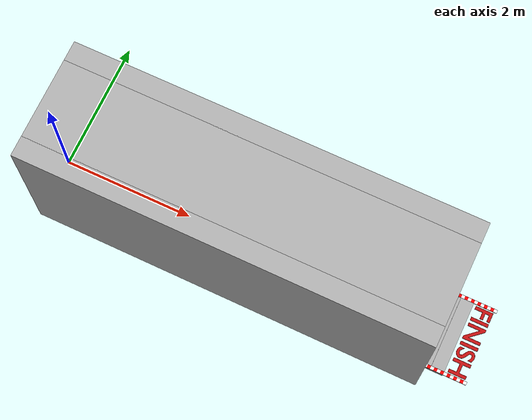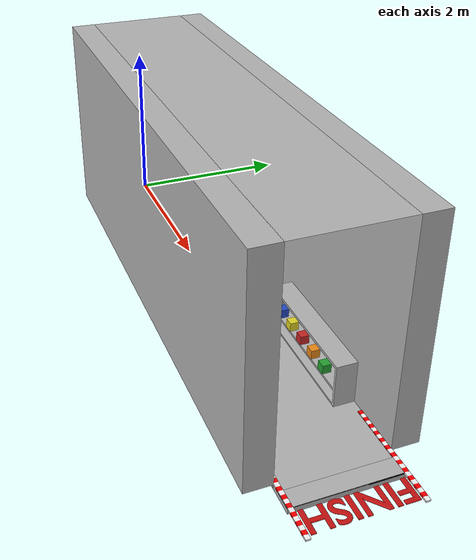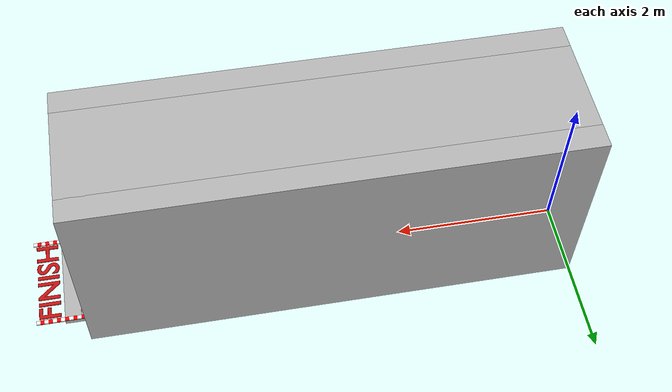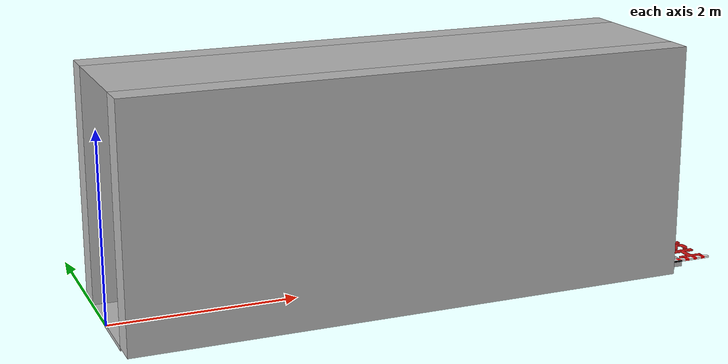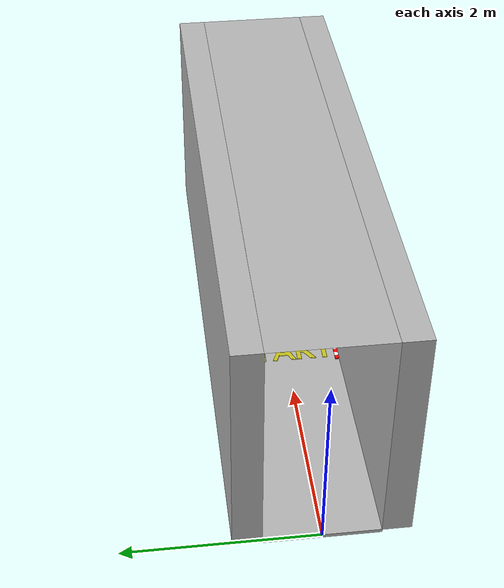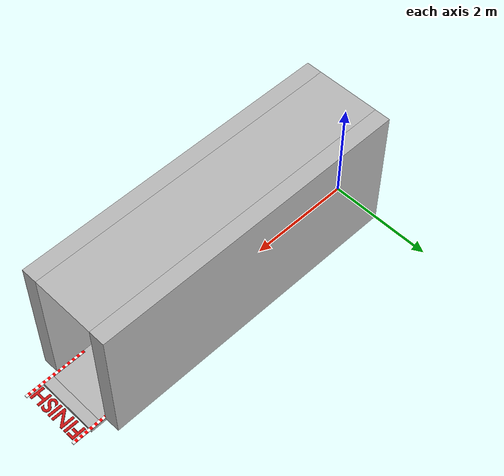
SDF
<?xml version="1.0" ?>
<sdf version="1.5">
  <world name="default">
    <gui>
      <camera name="user_camera">
        <pose>-3.2 0.0 2.05 0 0.33 0.0</pose>
      </camera>
    </gui>
    <scene>
      <sky>
        <clouds>
          <speed>3</speed>
        </clouds>
      </sky>
      <ambient>0.6 0.6 0.6 1</ambient>
      <background>0.5 0.5 0.5 1</background>
      <shadows>0</shadows>
    </scene>

    <!-- A global light source -->
    <include>
      <uri>model://sun_2</uri>
    </include>

    <include>
      <uri>model://task_5_whole</uri>
    </include>

    <include>
      <name>b1</name>
      <pose>4.0 0.4 0.28 0 0 0</pose>
      <uri>model://box_manipulation,2,false_blue</uri>
    </include>
    <include>
      <name>b2</name>
      <pose>4.25 0.4 0.28 0 0 0</pose>
      <uri>model://box_manipulation_2_true_yellow</uri>
    </include>
    <include>
      <name>b3</name>
      <pose>4.5 0.4 0.28 0 0 0</pose>
      <uri>model://box_manipulation_2_false_red</uri>
    </include>
    <include>
      <name>b4</name>
      <pose>4.75 0.4 0.28 0 0 0</pose>
      <uri>model://box_manipulation_2_false_orange</uri>
    </include>
    <include>
      <name>b5</name>
      <pose>5 0.4 0.28 0 0 0</pose>
      <uri>model://box_manipulation_2_false_green</uri>
    </include>

  </world>
</sdf>

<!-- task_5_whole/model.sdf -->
<sdf version="1.5">
  <model name="task_5_whole">

    <include>
      <pose>1.5 0.52 0.42 0 1.5708 0</pose>
      <uri>model://manipulation_1_false</uri>
    </include>

    <include>
      <pose>3.8 0.36 0 0 0 0</pose>
      <uri>model://bookcase</uri>
    </include>

    <include>
      <name>w1</name>
      <pose>3 0.745 0 0 0 0</pose>
      <uri>model://indoorwall_6m</uri>
    </include>
    <include>
      <name>w2</name>
      <pose>3 -0.745 0 0 0 0</pose>
      <uri>model://indoorwall_6m</uri>
    </include>

    <include>
      <pose>3.0 0 0.005 0 0 0</pose>
      <uri>model://floor_6m</uri>
    </include>
    <include>
      <pose>3.0 0 0 0 0 0</pose>
      <uri>model://roof_6m</uri>
    </include>

    <include>
      <pose>1.575 0.525 0 0 0 0</pose>
      <uri>model://qr_pole</uri>
    </include>

    <include>
      <pose>2.5 0 0 0 0 -1.5708</pose>
      <uri>model://start_line</uri>
    </include>
    <include>
      <pose>5.5 0 0 0 0 -1.5708</pose>
      <uri>model://finish_line</uri>
    </include>

    <include>
      <pose>4.6 0 -0.02 0 0 0</pose>
      <uri>model://indoorfloor_3.4m</uri>
    </include>

  </model>
</sdf>

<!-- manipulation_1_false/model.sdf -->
<sdf version="1.5">
  <model name="manipulation_1_false">
    <static>true</static>
    <link name="link">
      <pose>0 0 0 0 0 0</pose>
      <collision name="collision">
        <geometry>
          <box>
            <size>0.1 0.1 0.01</size>
          </box>
        </geometry>
      </collision>
      <visual name="visual">
        <cast_shadows>false</cast_shadows>
        <geometry>
          <box>
            <size>0.1 0.1 0.01</size>
          </box>
        </geometry>
        <material>
          <script>
            <uri>model://manipulation_1_false/materials/scripts</uri>
            <uri>model://manipulation_1_false/materials/textures</uri>
            <name>vrc/manipulation_1_false</name>
          </script>
        </material>
      </visual>
    </link>
  </model>
</sdf>

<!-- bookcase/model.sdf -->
<sdf version="1.5">
  <model name="bookcase">
    <static>true</static>
    <pose>0 0 0 0 0 0</pose>
    <link name="link">
      <collision name="bookcaseC">
        <geometry>
          <mesh>
            <uri>model://bookcase/untitled.dae</uri>
            <scale>1.0 1.0 1.0</scale>
          </mesh>
        </geometry>
      </collision>
      <visual name="bookcaseV">
        <cast_shadows>false</cast_shadows>
        <geometry>
          <mesh>
            <uri>model://bookcase/untitled.dae</uri>
            <scale>1.0 1.0 1.0</scale>
          </mesh>
        </geometry>
      </visual>
    </link>
  </model>
</sdf>

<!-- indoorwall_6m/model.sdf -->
<sdf version="1.5">
  <model name="indoorwall_6m">
    <static>true</static>
    <link name="link">
      <pose>0 0 1.25 0 0 0</pose>
      <collision name="collision">
        <geometry>
          <box>
            <size>6.0 0.3 2.5</size>
          </box>
        </geometry>
      </collision>
      <visual name="visual">
        <cast_shadows>false</cast_shadows>
        <geometry>
          <box>
            <size>6.0 0.3 2.5</size>
          </box>
        </geometry>
        <material>
          <script>
            <uri>model://indoorwall_6m/materials/scripts</uri>
            <uri>model://indoorwall_6m/materials/textures</uri>
            <name>vrc/indoorwall_6m</name>
          </script>
        </material>
      </visual>
    </link>
  </model>
</sdf>

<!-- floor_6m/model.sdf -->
<sdf version="1.5">
  <model name="floor_6m">
    <static>true</static>
    <link name="link">
      <pose>0 0 -0.02 0 0 0</pose>
      <collision name="collision">
        <geometry>
          <box>
            <size>6.0 1.2 0.04</size>
          </box>
        </geometry>
      </collision>
      <visual name="visual">
        <geometry>
          <box>
            <size>6.0 1.2 0.04</size>
          </box>
        </geometry>
        <material>
          <script>
            <uri>model://floor_6m/materials/scripts</uri>
            <uri>model://floor_6m/materials/textures</uri>
            <name>vrc/floor_6m</name>
          </script>
        </material>
      </visual>
    </link>
  </model>
</sdf>

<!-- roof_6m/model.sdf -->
<sdf version='1.5'>
<model name='roof_6m'>
<static>true</static>
<link name="link">
   <pose frame=''>0 0 2.5 0 0 0</pose>
   <collision name='roof_firstC'>
    <geometry>
      <mesh>
        <scale>1.0 -1.0 1.0</scale>
        <uri>model://roof_6m/roof2.dae</uri>
      </mesh>
    </geometry>
  </collision>
  <visual name='roof_firstV'>
    <cast_shadows>false</cast_shadows>
    <geometry>
      <mesh>
        <scale>1.0 -1.0 1.0</scale>
        <uri>model://roof_6m/roof2.dae</uri>
      </mesh>
    </geometry>
  </visual>
</link>
</model>
</sdf>

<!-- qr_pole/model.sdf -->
<sdf version="1.5">
  <model name="qr_pole">
    <static>true</static>
    <link name="link">
      <pose>0 0 0.25 0 0 0</pose>
      <collision name="collision">
        <geometry>
          <box>
            <size>0.15 0.15 0.5</size>
          </box>
        </geometry>
      </collision>
      <visual name="visual">
        <cast_shadows>false</cast_shadows>
        <geometry>
          <box>
            <size>0.15 0.15 0.5</size>
          </box>
        </geometry>
        <material>
          <script>
            <uri>file://media/materials/scripts/gazebo.material</uri>
            <name>Gazebo/Purple</name>
          </script>
        </material>
      </visual>
    </link>
  </model>
</sdf>

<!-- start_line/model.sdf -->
<sdf version="1.5">
  <model name="start_line">

    <include>
      <name>start</name>
      <pose>-0.55 0 0 0 0 0</pose>
      <uri>model://start</uri>
    </include>
    <include>
      <name>line</name>
      <pose>0 0.45 0 0 0 0</pose>
      <uri>model://line</uri>
    </include>
    <include>
      <name>rline</name>
      <pose>-0.575 0.55 0.001 0 0 1.5708</pose>
      <uri>model://redline</uri>
    </include>
    <include>
      <name>rline2</name>
      <pose>0.575 0.55 0.001 0 0 1.5708</pose>
      <uri>model://redline</uri>
    </include>

  </model>
</sdf>

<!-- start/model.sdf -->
<sdf version='1.5'>
<model name='start'>
<static>true</static>
<link name="link">
   <pose frame=''>0 0 0.01 0 0 0</pose>
  <visual name='startV'>
    <cast_shadows>false</cast_shadows>
    <geometry>
      <mesh>
        <scale>1.0 1.0 1.0</scale>
        <uri>model://start/model.dae</uri>
      </mesh>
    </geometry>
    <material>
      <script>
        <name>start</name>
        <uri>model://start/model.dae</uri>
      </script>
    </material>
  </visual>
</link>
</model>
</sdf>

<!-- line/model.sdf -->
<sdf version='1.5'>
<model name='line'>
<static>true</static>
<link name="link">
   <pose frame=''>0 0 0.01 0 0 0</pose>
  <visual name='lineV'>
    <cast_shadows>false</cast_shadows>
    <geometry>
      <mesh>
        <scale>1.0 1.0 1.0</scale>
        <uri>model://line/line.dae</uri>
      </mesh>
    </geometry>
    <material>
      <script>
        <name>start</name>
        <uri>model://line/line.dae</uri>
      </script>
    </material>
  </visual>
</link>
</model>
</sdf>

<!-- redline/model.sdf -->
<sdf version='1.5'>
<model name='redline'>
<static>true</static>
<link name="redline">
   <pose frame=''>0 0 0 0 0 0</pose>
  <visual name='redlineV'>
    <cast_shadows>false</cast_shadows>
    <geometry>
      <mesh>
        <scale>1.0 1.0 1.0</scale>
        <uri>model://redline/redline2.dae</uri>
      </mesh>
    </geometry>
    <material>
      <script>
        <name>start</name>
        <uri>model://redline/redline2.dae</uri>
      </script>
    </material>
  </visual>
</link>
</model>
</sdf>

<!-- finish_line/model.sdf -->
<sdf version="1.5">
  <model name="finish_line">

    <include>
      <name>start</name>
      <pose>-0.55 0.85 0 0 0 0</pose>
      <uri>model://finish</uri>
    </include>
    <include>
      <name>line</name>
      <pose>0 0.7 0 0 0 0</pose>
      <uri>model://line</uri>
    </include>
    <include>
      <name>rline</name>
      <pose>-0.575 0.55 0.001 0 0 1.5708</pose>
      <uri>model://redline</uri>
    </include>
    <include>
      <name>rline2</name>
      <pose>0.575 0.55 0.001 0 0 1.5708</pose>
      <uri>model://redline</uri>
    </include>

  </model>
</sdf>

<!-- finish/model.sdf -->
<sdf version='1.5'>
<model name='finish'>
<static>true</static>
<link name="link">
   <pose frame=''>0 0 0.01 0 0 0</pose>
  <visual name='finishV'>
    <cast_shadows>false</cast_shadows>
    <geometry>
      <mesh>
        <scale>1.0 1.0 1.0</scale>
        <uri>model://finish/model.dae</uri>
      </mesh>
    </geometry>
    <material>
      <script>
        <name>finish</name>
        <uri>model://finish/model.dae</uri>
      </script>
    </material>
  </visual>
</link>
</model>
</sdf>

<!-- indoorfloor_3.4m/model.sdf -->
<sdf version="1.5">
  <model name="indoorfloor_3.4m">
    <static>true</static>
    <link name="link">
      <pose>0 0 0 0 0 0</pose>
      <collision name="collision">
        <geometry>
          <box>
            <size>3.4 1.2 0.06</size>
          </box>
        </geometry>
      </collision>
      <visual name="visual">
        <cast_shadows>false</cast_shadows>
        <geometry>
          <box>
            <size>3.4 1.2 0.06</size>
          </box>
        </geometry>
        <material>
          <script>
            <uri>model://indoorfloor_3.4m/materials/scripts</uri>
            <uri>model://indoorfloor_3.4m/materials/textures</uri>
            <name>vrc/indoorfloor_3.4m</name>
          </script>
        </material>
      </visual>
    </link>
  </model>
</sdf>

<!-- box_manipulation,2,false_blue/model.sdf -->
<sdf version='1.6'>
  <model name='box_manipulation,2,false_blue'>
    <link name='coll'>
      <inertial>
        <mass>0.3</mass>
        <inertia> <!-- inertias are tricky to compute -->
          <!-- http://gazebosim.org/tutorials?tut=inertia&cat=build_robot -->
          <ixx>0.00083</ixx>       <!-- for a box: ixx = 0.083 * mass * (y*y + z*z) -->
          <ixy>0.0</ixy>         <!-- for a box: ixy = 0 -->
          <ixz>0.0</ixz>         <!-- for a box: ixz = 0 -->
          <iyy>0.00083</iyy>       <!-- for a box: iyy = 0.083 * mass * (x*x + z*z) -->
          <iyz>0.0</iyz>         <!-- for a box: iyz = 0 -->
          <izz>0.00083</izz>       <!-- for a box: izz = 0.083 * mass * (x*x + y*y) -->
        </inertia>
      </inertial>
      <collision name='box_manipulation,2,false_blue_c'>
        <geometry>
          <box>
            <size>0.1 0.1 0.1</size>
          </box>
        </geometry>
        <surface>
          <friction>
            <torsional>
              <coefficient>1000</coefficient>
            </torsional>
            <ode>
              <mu>100</mu>
              <mu2>100</mu2>
            </ode>
          </friction>
          <contact>
            <ode>
              <kp>1000000000</kp>
              <kd>100000000</kd>
              <min_depth>0.003</min_depth>
              <max_vel>0.0</max_vel>
            </ode>
          </contact>
        </surface>
      </collision>
      <visual name='box_manipulation,2,false_blue_v'>
        <geometry>
          <box>
            <size>0.1 0.1 0.1</size>
          </box>
        </geometry>
        <material>
          <script>
            <uri>model://box_manipulation,2,false_blue/materials/scripts</uri>
            <uri>model://box_manipulation,2,false_blue/materials/textures</uri>
            <name>vrc/box_manipulation,2,false_blue</name>
          </script>
        </material>
      </visual>
    </link>
  </model>
</sdf>

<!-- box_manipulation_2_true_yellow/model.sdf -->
<sdf version='1.6'>
  <model name='box_manipulation_2_true_yellow'>
    <link name='box_manipulation_2_true_yellow'>
      <inertial>
        <mass>0.3</mass>
        <inertia> <!-- inertias are tricky to compute -->
          <!-- http://gazebosim.org/tutorials?tut=inertia&cat=build_robot -->
          <ixx>0.00083</ixx>       <!-- for a box: ixx = 0.083 * mass * (y*y + z*z) -->
          <ixy>0.0</ixy>         <!-- for a box: ixy = 0 -->
          <ixz>0.0</ixz>         <!-- for a box: ixz = 0 -->
          <iyy>0.00083</iyy>       <!-- for a box: iyy = 0.083 * mass * (x*x + z*z) -->
          <iyz>0.0</iyz>         <!-- for a box: iyz = 0 -->
          <izz>0.00083</izz>       <!-- for a box: izz = 0.083 * mass * (x*x + y*y) -->
        </inertia>
      </inertial>
      <collision name='box_manipulation_2_true_yellow_c'>
        <geometry>
          <box>
            <size>0.1 0.1 0.1</size>
          </box>
        </geometry>
        <surface>
          <friction>
            <torsional>
              <coefficient>1000</coefficient>
            </torsional>
            <ode>
              <mu>100</mu>
              <mu2>100</mu2>
            </ode>
          </friction>
          <contact>
            <ode>
              <kp>1000000000</kp>
              <kd>100000000</kd>
              <min_depth>0.003</min_depth>
              <max_vel>0.0</max_vel>
            </ode>
          </contact>
        </surface>
      </collision>
      <visual name='box_manipulation_2_true_yellow_v'>
        <geometry>
          <box>
            <size>0.1 0.1 0.1</size>
          </box>
        </geometry>
        <material>
          <script>
            <uri>model://box_manipulation_2_true_yellow/materials/scripts</uri>
            <uri>model://box_manipulation_2_true_yellow/materials/textures</uri>
            <name>vrc/box_manipulation_2_true_yellow</name>
          </script>
        </material>
      </visual>
    </link>
  </model>
</sdf>

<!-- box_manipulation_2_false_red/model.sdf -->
<sdf version='1.6'>
  <model name='box_manipulation_2_false_red'>
    <link name='box_manipulation_2_false_red'>
      <inertial>
        <mass>0.3</mass>
        <inertia> <!-- inertias are tricky to compute -->
          <!-- http://gazebosim.org/tutorials?tut=inertia&cat=build_robot -->
          <ixx>0.00083</ixx>       <!-- for a box: ixx = 0.083 * mass * (y*y + z*z) -->
          <ixy>0.0</ixy>         <!-- for a box: ixy = 0 -->
          <ixz>0.0</ixz>         <!-- for a box: ixz = 0 -->
          <iyy>0.00083</iyy>       <!-- for a box: iyy = 0.083 * mass * (x*x + z*z) -->
          <iyz>0.0</iyz>         <!-- for a box: iyz = 0 -->
          <izz>0.00083</izz>       <!-- for a box: izz = 0.083 * mass * (x*x + y*y) -->
        </inertia>
      </inertial>
      <collision name='box_manipulation_2_false_red_c'>
        <geometry>
          <box>
            <size>0.1 0.1 0.1</size>
          </box>
        </geometry>
        <surface>
          <friction>
            <torsional>
              <coefficient>1000</coefficient>
            </torsional>
            <ode>
              <mu>100</mu>
              <mu2>100</mu2>
            </ode>
          </friction>
          <contact>
            <ode>
              <kp>1000000000</kp>
              <kd>100000000</kd>
              <min_depth>0.003</min_depth>
              <max_vel>0.0</max_vel>
            </ode>
          </contact>
        </surface>
      </collision>
      <visual name='box_manipulation_2_false_red_v'>
        <geometry>
          <box>
            <size>0.1 0.1 0.1</size>
          </box>
        </geometry>
        <material>
          <script>
            <uri>model://box_manipulation_2_false_red/materials/scripts</uri>
            <uri>model://box_manipulation_2_false_red/materials/textures</uri>
            <name>vrc/box_manipulation_2_false_red</name>
          </script>
        </material>
      </visual>
    </link>
  </model>
</sdf>

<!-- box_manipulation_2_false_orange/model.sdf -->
<sdf version='1.6'>
  <model name='box_manipulation_2_false_orange'>
    <link name='box_manipulation_2_false_orange'>
      <inertial>
        <mass>0.3</mass>
        <inertia> <!-- inertias are tricky to compute -->
          <!-- http://gazebosim.org/tutorials?tut=inertia&cat=build_robot -->
          <ixx>0.00083</ixx>       <!-- for a box: ixx = 0.083 * mass * (y*y + z*z) -->
          <ixy>0.0</ixy>         <!-- for a box: ixy = 0 -->
          <ixz>0.0</ixz>         <!-- for a box: ixz = 0 -->
          <iyy>0.00083</iyy>       <!-- for a box: iyy = 0.083 * mass * (x*x + z*z) -->
          <iyz>0.0</iyz>         <!-- for a box: iyz = 0 -->
          <izz>0.00083</izz>       <!-- for a box: izz = 0.083 * mass * (x*x + y*y) -->
        </inertia>
      </inertial>
      <collision name='box_manipulation_2_false_orange_c'>
        <geometry>
          <box>
            <size>0.1 0.1 0.1</size>
          </box>
        </geometry>
        <surface>
          <friction>
            <torsional>
              <coefficient>1000</coefficient>
            </torsional>
            <ode>
              <mu>100</mu>
              <mu2>100</mu2>
            </ode>
          </friction>
          <contact>
            <ode>
              <kp>1000000000</kp>
              <kd>100000000</kd>
              <min_depth>0.003</min_depth>
              <max_vel>0.0</max_vel>
            </ode>
          </contact>
        </surface>
      </collision>
      <visual name='box_manipulation_2_false_orange_v'>
        <geometry>
          <box>
            <size>0.1 0.1 0.1</size>
          </box>
        </geometry>
        <material>
          <script>
            <uri>model://box_manipulation_2_false_orange/materials/scripts</uri>
            <uri>model://box_manipulation_2_false_orange/materials/textures</uri>
            <name>vrc/box_manipulation_2_false_orange</name>
          </script>
        </material>
      </visual>
    </link>
  </model>
</sdf>

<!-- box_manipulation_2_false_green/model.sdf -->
<sdf version='1.6'>
  <model name='box_manipulation_2_false_green'>
    <link name='box_manipulation_2_false_green'>
      <inertial>
        <mass>0.3</mass>
        <inertia> <!-- inertias are tricky to compute -->
          <!-- http://gazebosim.org/tutorials?tut=inertia&cat=build_robot -->
          <ixx>0.00083</ixx>       <!-- for a box: ixx = 0.083 * mass * (y*y + z*z) -->
          <ixy>0.0</ixy>         <!-- for a box: ixy = 0 -->
          <ixz>0.0</ixz>         <!-- for a box: ixz = 0 -->
          <iyy>0.00083</iyy>       <!-- for a box: iyy = 0.083 * mass * (x*x + z*z) -->
          <iyz>0.0</iyz>         <!-- for a box: iyz = 0 -->
          <izz>0.00083</izz>       <!-- for a box: izz = 0.083 * mass * (x*x + y*y) -->
        </inertia>
      </inertial>
      <collision name='box_manipulation_2_false_green_c'>
        <geometry>
          <box>
            <size>0.1 0.1 0.1</size>
          </box>
        </geometry>
        <surface>
          <friction>
            <torsional>
              <coefficient>1000</coefficient>
            </torsional>
            <ode>
              <mu>100</mu>
              <mu2>100</mu2>
            </ode>
          </friction>
          <contact>
            <ode>
              <kp>1000000000</kp>
              <kd>100000000</kd>
              <min_depth>0.003</min_depth>
              <max_vel>0.0</max_vel>
            </ode>
          </contact>
        </surface>
      </collision>
      <visual name='box_manipulation_2_false_green_v'>
        <geometry>
          <box>
            <size>0.1 0.1 0.1</size>
          </box>
        </geometry>
        <surface>
            <friction>
                <ode>
                    <mu>100</mu>
                    <mu2>100</mu2>
                </ode>
            </friction>
        </surface>
        <material>
          <script>
            <uri>model://box_manipulation_2_false_green/materials/scripts</uri>
            <uri>model://box_manipulation_2_false_green/materials/textures</uri>
            <name>vrc/box_manipulation_2_false_green</name>
          </script>
        </material>
      </visual>
    </link>
  </model>
</sdf>
